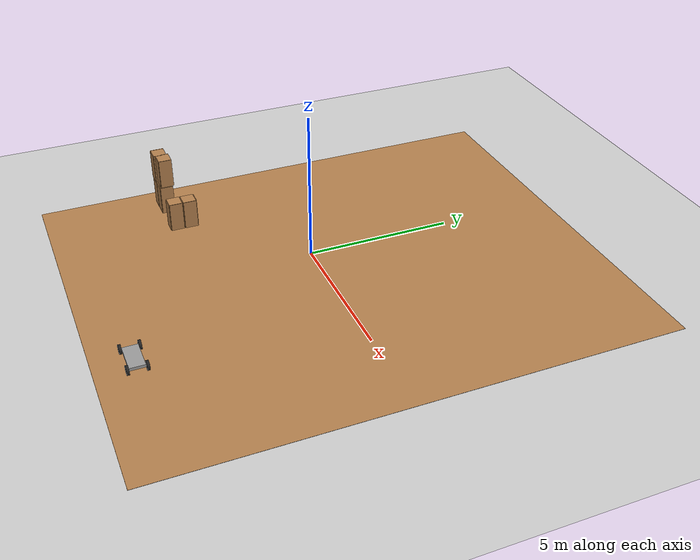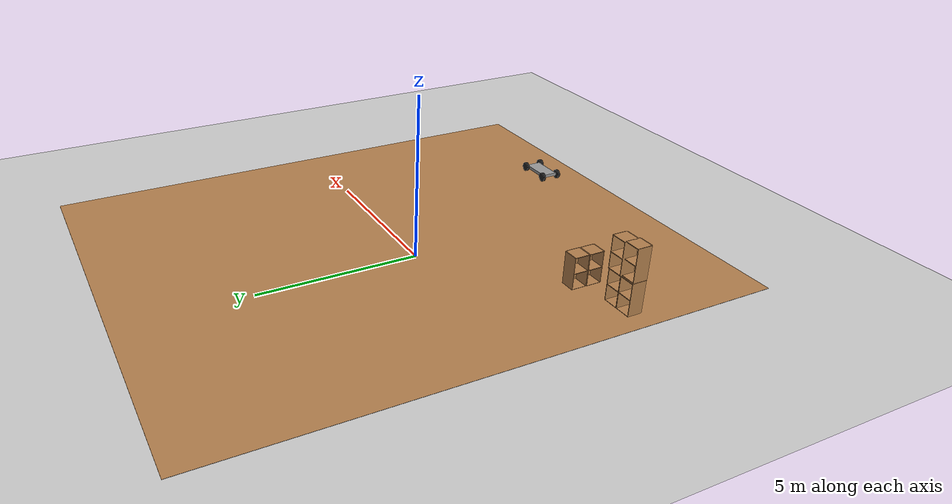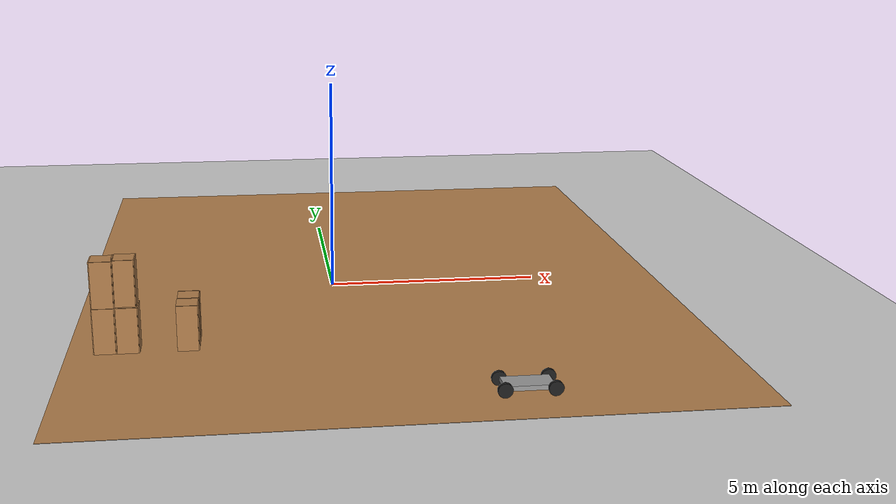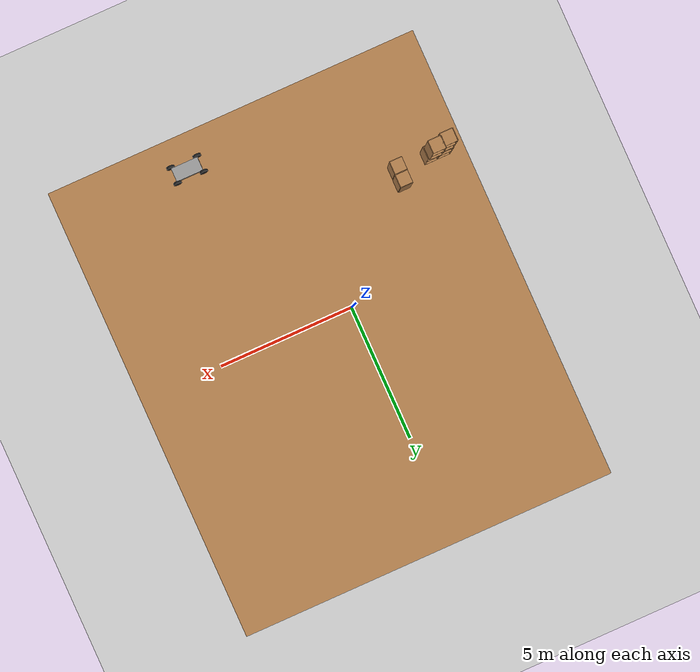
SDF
<sdf version="1.7">
 <world name="default">
  <model name="ground_plane">
   <static>1</static>
   <link name="link">
    <collision name="collision">
     <geometry><plane><normal>0 0 1</normal><size>100 100</size></plane></geometry>
     <surface>
      <contact><collide_bitmask>65535</collide_bitmask></contact>
      <friction><ode><mu>100</mu><mu2>50</mu2></ode></friction>
     </surface>
    </collision>
    <visual name="visual">
     <cast_shadows>0</cast_shadows>
     <geometry><plane><normal>0 0 1</normal><size>100 100</size></plane></geometry>
     <material>
      <script><uri>file://media/materials/scripts/gazebo.material</uri><name>Gazebo/Grey</name></script>
     </material>
    </visual>
   </link>
  </model>
  <model name="ground">
   <link name="Wall_2">
    <pose>6.2457 -16.572 0 0 -0 0</pose>
    <inertial>
     <mass>1</mass>
     <inertia><ixx>1</ixx><ixy>0</ixy><ixz>0</ixz><iyy>1</iyy><iyz>0</iyz><izz>1</izz></inertia>
    </inertial>
    <visual name="Wall_2_Visual">
     <pose>0 0 0.005 0 -0 0</pose>
     <geometry><box><size>14 17 0.01</size></box></geometry>
     <material>
      <script><uri>file://media/materials/scripts/gazebo.material</uri><name>Gazebo/Wood</name></script>
      <ambient>0 0 0 1</ambient>
      <shader type="pixel"><normal_map>__default__</normal_map></shader>
      <diffuse>1 1 1 1</diffuse>
      <specular>0.2 0.2 0.2 1</specular>
      <emissive>0 0 0 1</emissive>
     </material>
     <meta><layer>0</layer></meta>
    </visual>
    <collision name="Wall_2_Collision">
     <pose>0 0 0.005 0 -0 0</pose>
     <geometry><box><size>14 17 0.01</size></box></geometry>
     <surface>
      <friction>
       <ode><mu>1</mu><mu2>1</mu2><fdir1>0 0 0</fdir1><slip1>0</slip1><slip2>0</slip2></ode>
       <torsional>
        <coefficient>1</coefficient>
        <patch_radius>0</patch_radius>
        <surface_radius>0</surface_radius>
        <use_patch_radius>1</use_patch_radius>
        <ode><slip>0</slip></ode>
       </torsional>
      </friction>
      <bounce><restitution_coefficient>0</restitution_coefficient><threshold>1e+06</threshold></bounce>
      <contact>
       <collide_without_contact>0</collide_without_contact>
       <collide_without_contact_bitmask>1</collide_without_contact_bitmask>
       <collide_bitmask>1</collide_bitmask>
       <ode>
        <soft_cfm>0</soft_cfm>
        <soft_erp>0.2</soft_erp>
        <kp>1e+13</kp>
        <kd>1</kd>
        <max_vel>0.01</max_vel>
        <min_depth>0</min_depth>
       </ode>
       <bullet>
        <split_impulse>1</split_impulse>
        <split_impulse_penetration_threshold>-0.01</split_impulse_penetration_threshold>
        <soft_cfm>0</soft_cfm>
        <soft_erp>0.2</soft_erp>
        <kp>1e+13</kp>
        <kd>1</kd>
       </bullet>
      </contact>
     </surface>
    </collision>
   </link>
   <static>1</static>
   <pose>-5.17108 17.0771 0 0 -0 0</pose>
  </model>
  <model name="cabinet">
   <static>1</static>
   <link name="cabinet_bottom_plate">
    <inertial>
     <pose>0 0 -1 0 -0 0</pose>
     <inertia><ixx>2.05</ixx><ixy>0</ixy><ixz>0</ixz><iyy>2.05</iyy><iyz>0</iyz><izz>2.05</izz></inertia>
     <mass>25</mass>
    </inertial>
    <collision name="cabinet_bottom_plate_geom">
     <pose>0 0 0.01 0 -0 0</pose>
     <geometry><box><size>0.45 0.45 0.02</size></box></geometry>
    </collision>
    <visual name="cabinet_bottom_plate_geom_visual">
     <pose>0 0 0.01 0 -0 0</pose>
     <geometry><box><size>0.45 0.45 0.02</size></box></geometry>
     <material>
      <script><uri>file://media/materials/scripts/gazebo.material</uri><name>Gazebo/Wood</name></script>
     </material>
    </visual>
    <collision name="cabinet_bottom_plate_geom_cabinet_back_plate">
     <pose>0.235 0 0.51 0 -0 0</pose>
     <geometry><box><size>0.02 0.45 1.02</size></box></geometry>
    </collision>
    <visual name="cabinet_bottom_plate_geom_cabinet_back_plate_visual">
     <pose>0.235 0 0.51 0 -0 0</pose>
     <geometry><box><size>0.02 0.45 1.02</size></box></geometry>
     <material>
      <script><uri>file://media/materials/scripts/gazebo.material</uri><name>Gazebo/Wood</name></script>
     </material>
    </visual>
    <collision name="cabinet_bottom_plate_geom_cabinet_left_plate">
     <pose>0 0.235 0.51 0 -0 0</pose>
     <geometry><box><size>0.45 0.02 1.02</size></box></geometry>
    </collision>
    <visual name="cabinet_bottom_plate_geom_cabinet_left_plate_visual">
     <pose>0 0.235 0.51 0 -0 0</pose>
     <geometry><box><size>0.45 0.02 1.02</size></box></geometry>
     <material>
      <script><uri>file://media/materials/scripts/gazebo.material</uri><name>Gazebo/Wood</name></script>
     </material>
    </visual>
    <collision name="cabinet_bottom_plate_geom_cabinet_middle_plate">
     <pose>0 0 0.51 0 -0 0</pose>
     <geometry><box><size>0.45 0.45 0.02</size></box></geometry>
    </collision>
    <visual name="cabinet_bottom_plate_geom_cabinet_middle_plate_visual">
     <pose>0 0 0.51 0 -0 0</pose>
     <geometry><box><size>0.45 0.45 0.02</size></box></geometry>
     <material>
      <script><uri>file://media/materials/scripts/gazebo.material</uri><name>Gazebo/Wood</name></script>
     </material>
    </visual>
    <collision name="cabinet_bottom_plate_geom_cabinet_right_plate">
     <pose>0 -0.235 0.51 0 -0 0</pose>
     <geometry><box><size>0.45 0.02 1.02</size></box></geometry>
    </collision>
    <visual name="cabinet_bottom_plate_geom_cabinet_right_plate_visual">
     <pose>0 -0.235 0.51 0 -0 0</pose>
     <geometry><box><size>0.45 0.02 1.02</size></box></geometry>
     <material>
      <script><uri>file://media/materials/scripts/gazebo.material</uri><name>Gazebo/Wood</name></script>
     </material>
    </visual>
    <collision name="cabinet_bottom_plate_geom_cabinet_top_plate">
     <pose>0 0 1.01 0 -0 0</pose>
     <geometry><box><size>0.45 0.45 0.02</size></box></geometry>
    </collision>
    <visual name="cabinet_bottom_plate_geom_cabinet_top_plate_visual">
     <pose>0 0 1.01 0 -0 0</pose>
     <geometry><box><size>0.45 0.45 0.02</size></box></geometry>
     <material>
      <script><uri>file://media/materials/scripts/gazebo.material</uri><name>Gazebo/Wood</name></script>
     </material>
    </visual>
   </link>
   <pose>-3.38057 -3.73395 0 0 -0 0</pose>
  </model>
  <model name="cabinet_0">
   <static>1</static>
   <link name="cabinet_bottom_plate">
    <inertial>
     <pose>0 0 -1 0 -0 0</pose>
     <inertia><ixx>2.05</ixx><ixy>0</ixy><ixz>0</ixz><iyy>2.05</iyy><iyz>0</iyz><izz>2.05</izz></inertia>
     <mass>25</mass>
    </inertial>
    <collision name="cabinet_bottom_plate_geom">
     <pose>0 0 0.01 0 -0 0</pose>
     <geometry><box><size>0.45 0.45 0.02</size></box></geometry>
    </collision>
    <visual name="cabinet_bottom_plate_geom_visual">
     <pose>0 0 0.01 0 -0 0</pose>
     <geometry><box><size>0.45 0.45 0.02</size></box></geometry>
     <material>
      <script><uri>file://media/materials/scripts/gazebo.material</uri><name>Gazebo/Wood</name></script>
     </material>
    </visual>
    <collision name="cabinet_bottom_plate_geom_cabinet_back_plate">
     <pose>0.235 0 0.51 0 -0 0</pose>
     <geometry><box><size>0.02 0.45 1.02</size></box></geometry>
    </collision>
    <visual name="cabinet_bottom_plate_geom_cabinet_back_plate_visual">
     <pose>0.235 0 0.51 0 -0 0</pose>
     <geometry><box><size>0.02 0.45 1.02</size></box></geometry>
     <material>
      <script><uri>file://media/materials/scripts/gazebo.material</uri><name>Gazebo/Wood</name></script>
     </material>
    </visual>
    <collision name="cabinet_bottom_plate_geom_cabinet_left_plate">
     <pose>0 0.235 0.51 0 -0 0</pose>
     <geometry><box><size>0.45 0.02 1.02</size></box></geometry>
    </collision>
    <visual name="cabinet_bottom_plate_geom_cabinet_left_plate_visual">
     <pose>0 0.235 0.51 0 -0 0</pose>
     <geometry><box><size>0.45 0.02 1.02</size></box></geometry>
     <material>
      <script><uri>file://media/materials/scripts/gazebo.material</uri><name>Gazebo/Wood</name></script>
     </material>
    </visual>
    <collision name="cabinet_bottom_plate_geom_cabinet_middle_plate">
     <pose>0 0 0.51 0 -0 0</pose>
     <geometry><box><size>0.45 0.45 0.02</size></box></geometry>
    </collision>
    <visual name="cabinet_bottom_plate_geom_cabinet_middle_plate_visual">
     <pose>0 0 0.51 0 -0 0</pose>
     <geometry><box><size>0.45 0.45 0.02</size></box></geometry>
     <material>
      <script><uri>file://media/materials/scripts/gazebo.material</uri><name>Gazebo/Wood</name></script>
     </material>
    </visual>
    <collision name="cabinet_bottom_plate_geom_cabinet_right_plate">
     <pose>0 -0.235 0.51 0 -0 0</pose>
     <geometry><box><size>0.45 0.02 1.02</size></box></geometry>
    </collision>
    <visual name="cabinet_bottom_plate_geom_cabinet_right_plate_visual">
     <pose>0 -0.235 0.51 0 -0 0</pose>
     <geometry><box><size>0.45 0.02 1.02</size></box></geometry>
     <material>
      <script><uri>file://media/materials/scripts/gazebo.material</uri><name>Gazebo/Wood</name></script>
     </material>
    </visual>
    <collision name="cabinet_bottom_plate_geom_cabinet_top_plate">
     <pose>0 0 1.01 0 -0 0</pose>
     <geometry><box><size>0.45 0.45 0.02</size></box></geometry>
    </collision>
    <visual name="cabinet_bottom_plate_geom_cabinet_top_plate_visual">
     <pose>0 0 1.01 0 -0 0</pose>
     <geometry><box><size>0.45 0.45 0.02</size></box></geometry>
     <material>
      <script><uri>file://media/materials/scripts/gazebo.material</uri><name>Gazebo/Wood</name></script>
     </material>
    </visual>
   </link>
   <pose>-3.37311 -3.24711 0 0 -0 0</pose>
  </model>
  <model name="cabinet_1_clone">
   <static>1</static>
   <link name="cabinet_bottom_plate">
    <inertial>
     <pose>0 0 -1 0 -0 0</pose>
     <inertia><ixx>2.05</ixx><ixy>0</ixy><ixz>0</ixz><iyy>2.05</iyy><iyz>0</iyz><izz>2.05</izz></inertia>
     <mass>25</mass>
    </inertial>
    <collision name="cabinet_bottom_plate_geom">
     <pose>0 0 0.01 0 -0 0</pose>
     <geometry><box><size>0.45 0.45 0.02</size></box></geometry>
    </collision>
    <visual name="cabinet_bottom_plate_geom_visual">
     <pose>0 0 0.01 0 -0 0</pose>
     <geometry><box><size>0.45 0.45 0.02</size></box></geometry>
     <material>
      <script><uri>file://media/materials/scripts/gazebo.material</uri><name>Gazebo/Wood</name></script>
     </material>
    </visual>
    <collision name="cabinet_bottom_plate_geom_cabinet_back_plate">
     <pose>0.235 0 0.51 0 -0 0</pose>
     <geometry><box><size>0.02 0.45 1.02</size></box></geometry>
    </collision>
    <visual name="cabinet_bottom_plate_geom_cabinet_back_plate_visual">
     <pose>0.235 0 0.51 0 -0 0</pose>
     <geometry><box><size>0.02 0.45 1.02</size></box></geometry>
     <material>
      <script><uri>file://media/materials/scripts/gazebo.material</uri><name>Gazebo/Wood</name></script>
     </material>
    </visual>
    <collision name="cabinet_bottom_plate_geom_cabinet_left_plate">
     <pose>0 0.235 0.51 0 -0 0</pose>
     <geometry><box><size>0.45 0.02 1.02</size></box></geometry>
    </collision>
    <visual name="cabinet_bottom_plate_geom_cabinet_left_plate_visual">
     <pose>0 0.235 0.51 0 -0 0</pose>
     <geometry><box><size>0.45 0.02 1.02</size></box></geometry>
     <material>
      <script><uri>file://media/materials/scripts/gazebo.material</uri><name>Gazebo/Wood</name></script>
     </material>
    </visual>
    <collision name="cabinet_bottom_plate_geom_cabinet_middle_plate">
     <pose>0 0 0.51 0 -0 0</pose>
     <geometry><box><size>0.45 0.45 0.02</size></box></geometry>
    </collision>
    <visual name="cabinet_bottom_plate_geom_cabinet_middle_plate_visual">
     <pose>0 0 0.51 0 -0 0</pose>
     <geometry><box><size>0.45 0.45 0.02</size></box></geometry>
     <material>
      <script><uri>file://media/materials/scripts/gazebo.material</uri><name>Gazebo/Wood</name></script>
     </material>
    </visual>
    <collision name="cabinet_bottom_plate_geom_cabinet_right_plate">
     <pose>0 -0.235 0.51 0 -0 0</pose>
     <geometry><box><size>0.45 0.02 1.02</size></box></geometry>
    </collision>
    <visual name="cabinet_bottom_plate_geom_cabinet_right_plate_visual">
     <pose>0 -0.235 0.51 0 -0 0</pose>
     <geometry><box><size>0.45 0.02 1.02</size></box></geometry>
     <material>
      <script><uri>file://media/materials/scripts/gazebo.material</uri><name>Gazebo/Wood</name></script>
     </material>
    </visual>
    <collision name="cabinet_bottom_plate_geom_cabinet_top_plate">
     <pose>0 0 1.01 0 -0 0</pose>
     <geometry><box><size>0.45 0.45 0.02</size></box></geometry>
    </collision>
    <visual name="cabinet_bottom_plate_geom_cabinet_top_plate_visual">
     <pose>0 0 1.01 0 -0 0</pose>
     <geometry><box><size>0.45 0.45 0.02</size></box></geometry>
     <material>
      <script><uri>file://media/materials/scripts/gazebo.material</uri><name>Gazebo/Wood</name></script>
     </material>
    </visual>
   </link>
   <pose>-5.10994 -3.73868 0 0 0 -1.5708</pose>
  </model>
  <model name="cabinet_1_clone_0">
   <static>1</static>
   <link name="cabinet_bottom_plate">
    <inertial>
     <pose>0 0 -1 0 -0 0</pose>
     <inertia><ixx>2.05</ixx><ixy>0</ixy><ixz>0</ixz><iyy>2.05</iyy><iyz>0</iyz><izz>2.05</izz></inertia>
     <mass>25</mass>
    </inertial>
    <collision name="cabinet_bottom_plate_geom">
     <pose>0 0 0.01 0 -0 0</pose>
     <geometry><box><size>0.45 0.45 0.02</size></box></geometry>
    </collision>
    <visual name="cabinet_bottom_plate_geom_visual">
     <pose>0 0 0.01 0 -0 0</pose>
     <geometry><box><size>0.45 0.45 0.02</size></box></geometry>
     <material>
      <script><uri>file://media/materials/scripts/gazebo.material</uri><name>Gazebo/Wood</name></script>
     </material>
    </visual>
    <collision name="cabinet_bottom_plate_geom_cabinet_back_plate">
     <pose>0.235 0 0.51 0 -0 0</pose>
     <geometry><box><size>0.02 0.45 1.02</size></box></geometry>
    </collision>
    <visual name="cabinet_bottom_plate_geom_cabinet_back_plate_visual">
     <pose>0.235 0 0.51 0 -0 0</pose>
     <geometry><box><size>0.02 0.45 1.02</size></box></geometry>
     <material>
      <script><uri>file://media/materials/scripts/gazebo.material</uri><name>Gazebo/Wood</name></script>
     </material>
    </visual>
    <collision name="cabinet_bottom_plate_geom_cabinet_left_plate">
     <pose>0 0.235 0.51 0 -0 0</pose>
     <geometry><box><size>0.45 0.02 1.02</size></box></geometry>
    </collision>
    <visual name="cabinet_bottom_plate_geom_cabinet_left_plate_visual">
     <pose>0 0.235 0.51 0 -0 0</pose>
     <geometry><box><size>0.45 0.02 1.02</size></box></geometry>
     <material>
      <script><uri>file://media/materials/scripts/gazebo.material</uri><name>Gazebo/Wood</name></script>
     </material>
    </visual>
    <collision name="cabinet_bottom_plate_geom_cabinet_middle_plate">
     <pose>0 0 0.51 0 -0 0</pose>
     <geometry><box><size>0.45 0.45 0.02</size></box></geometry>
    </collision>
    <visual name="cabinet_bottom_plate_geom_cabinet_middle_plate_visual">
     <pose>0 0 0.51 0 -0 0</pose>
     <geometry><box><size>0.45 0.45 0.02</size></box></geometry>
     <material>
      <script><uri>file://media/materials/scripts/gazebo.material</uri><name>Gazebo/Wood</name></script>
     </material>
    </visual>
    <collision name="cabinet_bottom_plate_geom_cabinet_right_plate">
     <pose>0 -0.235 0.51 0 -0 0</pose>
     <geometry><box><size>0.45 0.02 1.02</size></box></geometry>
    </collision>
    <visual name="cabinet_bottom_plate_geom_cabinet_right_plate_visual">
     <pose>0 -0.235 0.51 0 -0 0</pose>
     <geometry><box><size>0.45 0.02 1.02</size></box></geometry>
     <material>
      <script><uri>file://media/materials/scripts/gazebo.material</uri><name>Gazebo/Wood</name></script>
     </material>
    </visual>
    <collision name="cabinet_bottom_plate_geom_cabinet_top_plate">
     <pose>0 0 1.01 0 -0 0</pose>
     <geometry><box><size>0.45 0.45 0.02</size></box></geometry>
    </collision>
    <visual name="cabinet_bottom_plate_geom_cabinet_top_plate_visual">
     <pose>0 0 1.01 0 -0 0</pose>
     <geometry><box><size>0.45 0.45 0.02</size></box></geometry>
     <material>
      <script><uri>file://media/materials/scripts/gazebo.material</uri><name>Gazebo/Wood</name></script>
     </material>
    </visual>
   </link>
   <pose>-4.62982 -3.73699 0 0 0 -1.5708</pose>
  </model>
  <model name="cabinet_1_clone_1">
   <static>1</static>
   <link name="cabinet_bottom_plate">
    <inertial>
     <pose>0 0 -1 0 -0 0</pose>
     <inertia><ixx>2.05</ixx><ixy>0</ixy><ixz>0</ixz><iyy>2.05</iyy><iyz>0</iyz><izz>2.05</izz></inertia>
     <mass>25</mass>
    </inertial>
    <collision name="cabinet_bottom_plate_geom">
     <pose>0 0 0.01 0 -0 0</pose>
     <geometry><box><size>0.45 0.45 0.02</size></box></geometry>
    </collision>
    <visual name="cabinet_bottom_plate_geom_visual">
     <pose>0 0 0.01 0 -0 0</pose>
     <geometry><box><size>0.45 0.45 0.02</size></box></geometry>
     <material>
      <script><uri>file://media/materials/scripts/gazebo.material</uri><name>Gazebo/Wood</name></script>
     </material>
    </visual>
    <collision name="cabinet_bottom_plate_geom_cabinet_back_plate">
     <pose>0.235 0 0.51 0 -0 0</pose>
     <geometry><box><size>0.02 0.45 1.02</size></box></geometry>
    </collision>
    <visual name="cabinet_bottom_plate_geom_cabinet_back_plate_visual">
     <pose>0.235 0 0.51 0 -0 0</pose>
     <geometry><box><size>0.02 0.45 1.02</size></box></geometry>
     <material>
      <script><uri>file://media/materials/scripts/gazebo.material</uri><name>Gazebo/Wood</name></script>
     </material>
    </visual>
    <collision name="cabinet_bottom_plate_geom_cabinet_left_plate">
     <pose>0 0.235 0.51 0 -0 0</pose>
     <geometry><box><size>0.45 0.02 1.02</size></box></geometry>
    </collision>
    <visual name="cabinet_bottom_plate_geom_cabinet_left_plate_visual">
     <pose>0 0.235 0.51 0 -0 0</pose>
     <geometry><box><size>0.45 0.02 1.02</size></box></geometry>
     <material>
      <script><uri>file://media/materials/scripts/gazebo.material</uri><name>Gazebo/Wood</name></script>
     </material>
    </visual>
    <collision name="cabinet_bottom_plate_geom_cabinet_middle_plate">
     <pose>0 0 0.51 0 -0 0</pose>
     <geometry><box><size>0.45 0.45 0.02</size></box></geometry>
    </collision>
    <visual name="cabinet_bottom_plate_geom_cabinet_middle_plate_visual">
     <pose>0 0 0.51 0 -0 0</pose>
     <geometry><box><size>0.45 0.45 0.02</size></box></geometry>
     <material>
      <script><uri>file://media/materials/scripts/gazebo.material</uri><name>Gazebo/Wood</name></script>
     </material>
    </visual>
    <collision name="cabinet_bottom_plate_geom_cabinet_right_plate">
     <pose>0 -0.235 0.51 0 -0 0</pose>
     <geometry><box><size>0.45 0.02 1.02</size></box></geometry>
    </collision>
    <visual name="cabinet_bottom_plate_geom_cabinet_right_plate_visual">
     <pose>0 -0.235 0.51 0 -0 0</pose>
     <geometry><box><size>0.45 0.02 1.02</size></box></geometry>
     <material>
      <script><uri>file://media/materials/scripts/gazebo.material</uri><name>Gazebo/Wood</name></script>
     </material>
    </visual>
    <collision name="cabinet_bottom_plate_geom_cabinet_top_plate">
     <pose>0 0 1.01 0 -0 0</pose>
     <geometry><box><size>0.45 0.45 0.02</size></box></geometry>
    </collision>
    <visual name="cabinet_bottom_plate_geom_cabinet_top_plate_visual">
     <pose>0 0 1.01 0 -0 0</pose>
     <geometry><box><size>0.45 0.45 0.02</size></box></geometry>
     <material>
      <script><uri>file://media/materials/scripts/gazebo.material</uri><name>Gazebo/Wood</name></script>
     </material>
    </visual>
   </link>
   <pose>-4.65564 -3.68973 1.03113 0 0 -1.5708</pose>
  </model>
  <model name="cabinet_1_clone_1_clone">
   <static>1</static>
   <link name="cabinet_bottom_plate">
    <inertial>
     <pose>0 0 -1 0 -0 0</pose>
     <inertia><ixx>2.05</ixx><ixy>0</ixy><ixz>0</ixz><iyy>2.05</iyy><iyz>0</iyz><izz>2.05</izz></inertia>
     <mass>25</mass>
    </inertial>
    <collision name="cabinet_bottom_plate_geom">
     <pose>0 0 0.01 0 -0 0</pose>
     <geometry><box><size>0.45 0.45 0.02</size></box></geometry>
    </collision>
    <visual name="cabinet_bottom_plate_geom_visual">
     <pose>0 0 0.01 0 -0 0</pose>
     <geometry><box><size>0.45 0.45 0.02</size></box></geometry>
     <material>
      <script><uri>file://media/materials/scripts/gazebo.material</uri><name>Gazebo/Wood</name></script>
     </material>
    </visual>
    <collision name="cabinet_bottom_plate_geom_cabinet_back_plate">
     <pose>0.235 0 0.51 0 -0 0</pose>
     <geometry><box><size>0.02 0.45 1.02</size></box></geometry>
    </collision>
    <visual name="cabinet_bottom_plate_geom_cabinet_back_plate_visual">
     <pose>0.235 0 0.51 0 -0 0</pose>
     <geometry><box><size>0.02 0.45 1.02</size></box></geometry>
     <material>
      <script><uri>file://media/materials/scripts/gazebo.material</uri><name>Gazebo/Wood</name></script>
     </material>
    </visual>
    <collision name="cabinet_bottom_plate_geom_cabinet_left_plate">
     <pose>0 0.235 0.51 0 -0 0</pose>
     <geometry><box><size>0.45 0.02 1.02</size></box></geometry>
    </collision>
    <visual name="cabinet_bottom_plate_geom_cabinet_left_plate_visual">
     <pose>0 0.235 0.51 0 -0 0</pose>
     <geometry><box><size>0.45 0.02 1.02</size></box></geometry>
     <material>
      <script><uri>file://media/materials/scripts/gazebo.material</uri><name>Gazebo/Wood</name></script>
     </material>
    </visual>
    <collision name="cabinet_bottom_plate_geom_cabinet_middle_plate">
     <pose>0 0 0.51 0 -0 0</pose>
     <geometry><box><size>0.45 0.45 0.02</size></box></geometry>
    </collision>
    <visual name="cabinet_bottom_plate_geom_cabinet_middle_plate_visual">
     <pose>0 0 0.51 0 -0 0</pose>
     <geometry><box><size>0.45 0.45 0.02</size></box></geometry>
     <material>
      <script><uri>file://media/materials/scripts/gazebo.material</uri><name>Gazebo/Wood</name></script>
     </material>
    </visual>
    <collision name="cabinet_bottom_plate_geom_cabinet_right_plate">
     <pose>0 -0.235 0.51 0 -0 0</pose>
     <geometry><box><size>0.45 0.02 1.02</size></box></geometry>
    </collision>
    <visual name="cabinet_bottom_plate_geom_cabinet_right_plate_visual">
     <pose>0 -0.235 0.51 0 -0 0</pose>
     <geometry><box><size>0.45 0.02 1.02</size></box></geometry>
     <material>
      <script><uri>file://media/materials/scripts/gazebo.material</uri><name>Gazebo/Wood</name></script>
     </material>
    </visual>
    <collision name="cabinet_bottom_plate_geom_cabinet_top_plate">
     <pose>0 0 1.01 0 -0 0</pose>
     <geometry><box><size>0.45 0.45 0.02</size></box></geometry>
    </collision>
    <visual name="cabinet_bottom_plate_geom_cabinet_top_plate_visual">
     <pose>0 0 1.01 0 -0 0</pose>
     <geometry><box><size>0.45 0.45 0.02</size></box></geometry>
     <material>
      <script><uri>file://media/materials/scripts/gazebo.material</uri><name>Gazebo/Wood</name></script>
     </material>
    </visual>
   </link>
   <pose>-5.10264 -3.75351 1.03113 0 0 -1.5708</pose>
  </model>
  <model name="cart_rigid_suspension">
   <link name="chassis">
    <pose>0 0 0.15 0 -0 0</pose>
    <inertial>
     <pose>0.1 0 0 0 -0 0</pose>
     <mass>10</mass>
     <inertia>
      <ixx>0.216667</ixx>
      <iyy>0.841667</iyy>
      <izz>1.04167</izz>
      <ixy>0</ixy>
      <ixz>0</ixz>
      <iyz>0</iyz>
     </inertia>
    </inertial>
    <collision name="collision"><geometry><box><size>1 0.5 0.1</size></box></geometry></collision>
    <visual name="visual">
     <geometry><box><size>1 0.5 0.1</size></box></geometry>
     <material>
      <script><uri>file://media/materials/scripts/gazebo.material</uri><name>Gazebo/Grey</name></script>
     </material>
    </visual>
   </link>
   <link name="wheel_front_left">
    <pose>0.5 0.298 0.15 -1.5708 0 0</pose>
    <inertial>
     <mass>0.5</mass>
     <inertia>
      <ixx>0.00307917</ixx>
      <iyy>0.00307917</iyy>
      <izz>0.005625</izz>
      <ixy>0</ixy>
      <ixz>0</ixz>
      <iyz>0</iyz>
     </inertia>
    </inertial>
    <collision name="collision">
     <geometry><cylinder><radius>0.15</radius><length>0.08</length></cylinder></geometry>
    </collision>
    <visual name="visual">
     <geometry><cylinder><radius>0.15</radius><length>0.08</length></cylinder></geometry>
     <material>
      <script><uri>file://media/materials/scripts/gazebo.material</uri><name>Gazebo/Black</name></script>
     </material>
    </visual>
   </link>
   <joint name="wheel_front_left_spin" type="revolute">
    <parent>chassis</parent>
    <child>wheel_front_left</child>
    <axis>
     <xyz>0 0 1</xyz>
     <limit><lower>-1e+16</lower><upper>1e+16</upper></limit>
     <dynamics><spring_reference>0</spring_reference><spring_stiffness>0</spring_stiffness></dynamics>
    </axis>
   </joint>
   <link name="wheel_front_right">
    <pose>0.5 -0.298 0.15 -1.5708 0 0</pose>
    <inertial>
     <mass>0.5</mass>
     <inertia>
      <ixx>0.00307917</ixx>
      <iyy>0.00307917</iyy>
      <izz>0.005625</izz>
      <ixy>0</ixy>
      <ixz>0</ixz>
      <iyz>0</iyz>
     </inertia>
    </inertial>
    <collision name="collision">
     <geometry><cylinder><radius>0.15</radius><length>0.08</length></cylinder></geometry>
    </collision>
    <visual name="visual">
     <geometry><cylinder><radius>0.15</radius><length>0.08</length></cylinder></geometry>
     <material>
      <script><uri>file://media/materials/scripts/gazebo.material</uri><name>Gazebo/Black</name></script>
     </material>
    </visual>
   </link>
   <joint name="wheel_front_right_spin" type="revolute">
    <parent>chassis</parent>
    <child>wheel_front_right</child>
    <axis>
     <xyz>0 0 1</xyz>
     <limit><lower>-1e+16</lower><upper>1e+16</upper></limit>
     <dynamics><spring_reference>0</spring_reference><spring_stiffness>0</spring_stiffness></dynamics>
    </axis>
   </joint>
   <link name="wheel_rear_left">
    <pose>-0.5 0.298 0.15 -1.5708 0 0</pose>
    <inertial>
     <mass>0.5</mass>
     <inertia>
      <ixx>0.00307917</ixx>
      <iyy>0.00307917</iyy>
      <izz>0.005625</izz>
      <ixy>0</ixy>
      <ixz>0</ixz>
      <iyz>0</iyz>
     </inertia>
    </inertial>
    <collision name="collision">
     <geometry><cylinder><radius>0.15</radius><length>0.08</length></cylinder></geometry>
    </collision>
    <visual name="visual">
     <geometry><cylinder><radius>0.15</radius><length>0.08</length></cylinder></geometry>
     <material>
      <script><uri>file://media/materials/scripts/gazebo.material</uri><name>Gazebo/Black</name></script>
     </material>
    </visual>
   </link>
   <joint name="wheel_rear_left_spin" type="revolute">
    <parent>chassis</parent>
    <child>wheel_rear_left</child>
    <axis>
     <xyz>0 0 1</xyz>
     <limit><lower>-1e+16</lower><upper>1e+16</upper></limit>
     <dynamics><spring_reference>0</spring_reference><spring_stiffness>0</spring_stiffness></dynamics>
    </axis>
   </joint>
   <link name="wheel_rear_right">
    <pose>-0.5 -0.298 0.15 -1.5708 0 0</pose>
    <inertial>
     <mass>0.5</mass>
     <inertia>
      <ixx>0.00307917</ixx>
      <iyy>0.00307917</iyy>
      <izz>0.005625</izz>
      <ixy>0</ixy>
      <ixz>0</ixz>
      <iyz>0</iyz>
     </inertia>
    </inertial>
    <collision name="collision">
     <geometry><cylinder><radius>0.15</radius><length>0.08</length></cylinder></geometry>
    </collision>
    <visual name="visual">
     <geometry><cylinder><radius>0.15</radius><length>0.08</length></cylinder></geometry>
     <material>
      <script><uri>file://media/materials/scripts/gazebo.material</uri><name>Gazebo/Black</name></script>
     </material>
    </visual>
   </link>
   <joint name="wheel_rear_right_spin" type="revolute">
    <parent>chassis</parent>
    <child>wheel_rear_right</child>
    <axis>
     <xyz>0 0 1</xyz>
     <limit><lower>-1e+16</lower><upper>1e+16</upper></limit>
     <dynamics><spring_reference>0</spring_reference><spring_stiffness>0</spring_stiffness></dynamics>
    </axis>
   </joint>
   <pose>3.26518 -6.73612 0.01 0 -0 -1.1e-05</pose>
  </model>
 </world>
</sdf>
